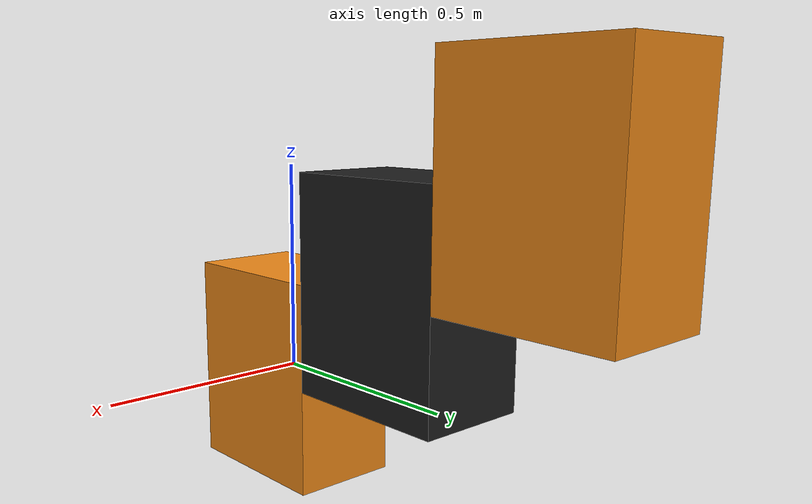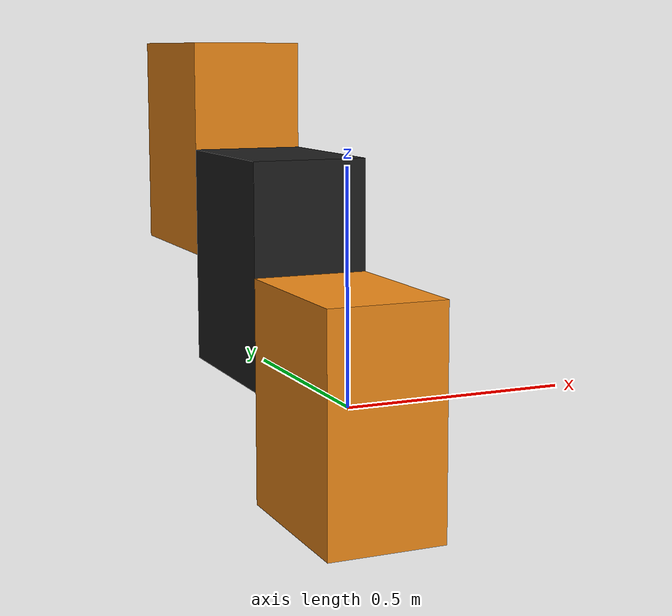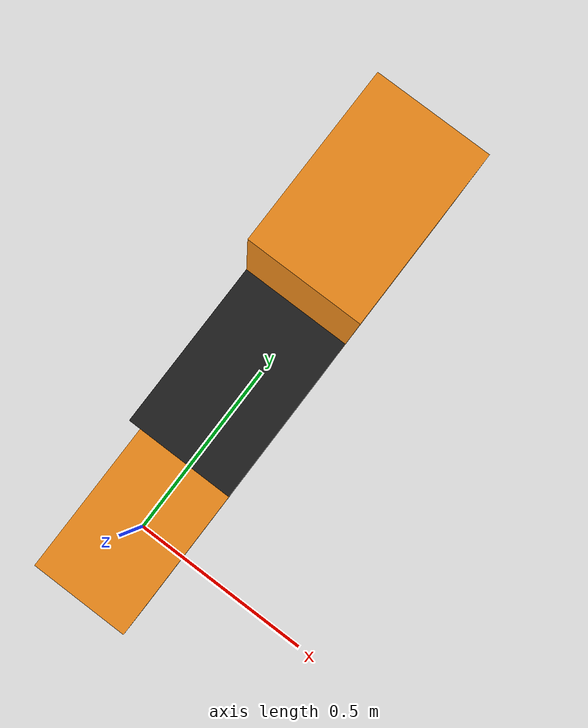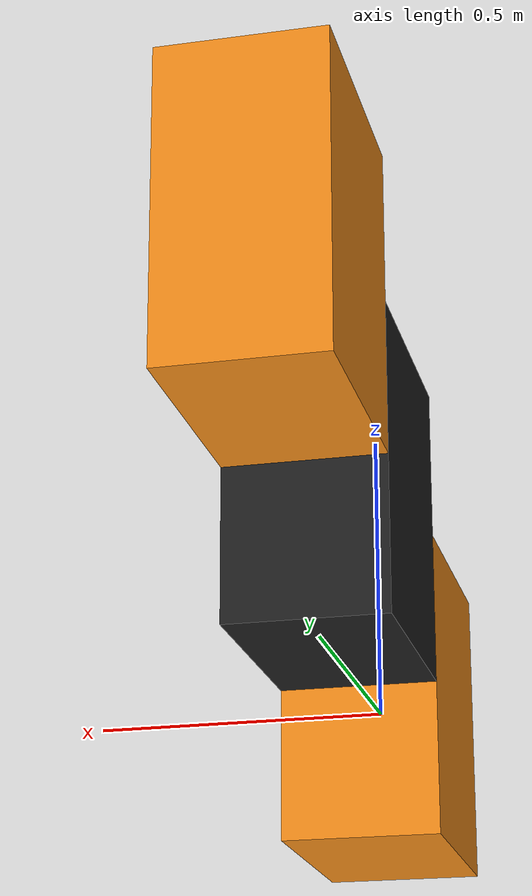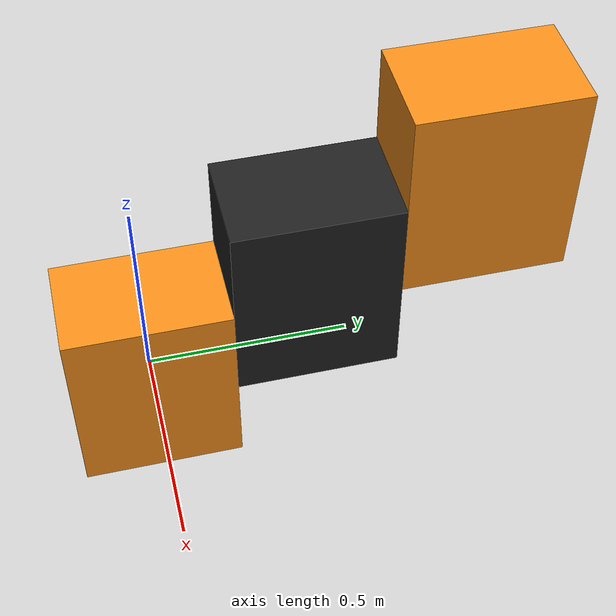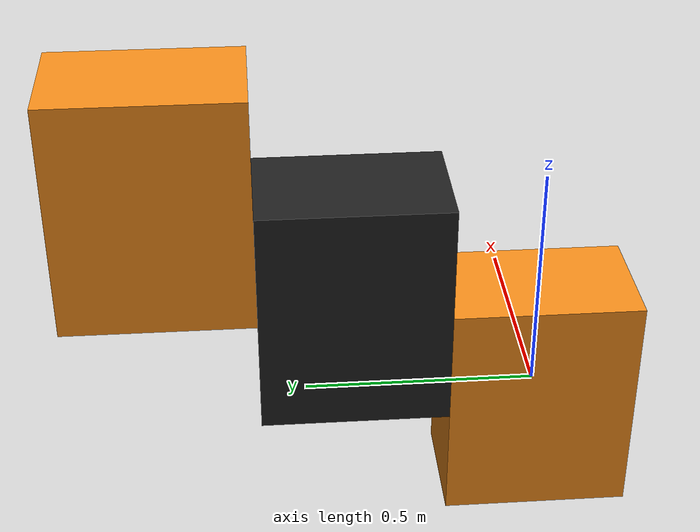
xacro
<?xml version="1.0"?>
<robot name="test_myrobot" xmlns:xacro="http://www.ros.org/wiki/xacro">
    <xacro:property name="mass" value="1" />
    <xacro:property name="ax12_width" value="0.26" />
    <xacro:property name="ax12_height" value="0.5" />
    <xacro:property name="ax12_depth" value="0.4" />
    <xacro:property name="axel_offset" value="0.25" /> <!-- Space btw top of beam and the each joint -->
    <xacro:property name="width" value="0.1" /> <!-- Square dimensions (widthxwidth) of beams -->
    <xacro:property name="height1" value="2" /> <!-- Link 1 -->
    <xacro:property name="height2" value="1" /> <!-- Link 2 -->
    <xacro:property name="height3" value="1" /> <!-- Link 3 -->
    <xacro:property name="link1_origin">
        <origin xyz="0 0 0" rpy="0 0 0"/>
    </xacro:property>
    <xacro:property name="link2_origin">
        <origin xyz="0 0 ${ax12_height/2 - axel_offset}" rpy="0 0 0"/>
    </xacro:property>
    <xacro:property name="link3_origin">
        <origin xyz="0 0 ${ax12_height/2 - axel_offset}" rpy="0 0 0"/>
    </xacro:property>
    <xacro:property name="ax12_block">
        <box size="${ax12_width} ${ax12_depth} ${ax12_height}"/>
    </xacro:property>
    <xacro:property name="ax12_block_inertia">
        <inertia
            ixx="${mass/12.0*(ax12_width*ax12_width + ax12_height*ax12_height)}" ixy="0.0" ixz="0.0"
            iyy="${mass/12.0*(ax12_width*ax12_width + ax12_height*ax12_height)}" iyz="0.0"
            izz="${mass/12.0*(ax12_width*ax12_width + ax12_width*ax12_width)}"/>
    </xacro:property>

    <!-- Import Gazebo-customization stuff -->
    <xacro:include filename="$(find jimmy2_description)/urdf/test.gazebo" />

    <link name="world" />
    <joint name="fixed" type="fixed">
        <parent link="world"/>
        <child link="link1"/>
    </joint>

    <!-- Base Link -->
    <link name="link1">
        <collision>
            <xacro:insert_block name="link1_origin"/>
            <geometry>
                <xacro:insert_block name="ax12_block"/>
            </geometry>
        </collision>
        <visual>
            <xacro:insert_block name="link1_origin"/>
            <geometry>
                <xacro:insert_block name="ax12_block"/>
            </geometry>
            <material name="orange"/>
        </visual>
        <inertial>
            <xacro:insert_block name="link1_origin"/>
            <mass value="${mass}"/>
            <xacro:insert_block name="ax12_block_inertia"/>
        </inertial>
    </link>

    <!-- end of Base Link -->

    <joint name="joint1" type="continuous">
        <parent link="link1"/>
        <child link="link2"/>
        <origin xyz="0 ${ax12_depth} ${ax12_height - axel_offset}" rpy="0 0 0"/>
        <axis xyz="0 1 0"/>
        <dynamics damping="0.7"/>
    </joint>

    <!-- Middle Link -->
    <link name="link2">
        <collision>
            <xacro:insert_block name="link2_origin"/>
            <geometry>
                <xacro:insert_block name="ax12_block"/>
            </geometry>
        </collision>
        <visual>
            <xacro:insert_block name="link2_origin"/>
            <geometry>
                <xacro:insert_block name="ax12_block"/>
            </geometry>
            <material name="black"/>
        </visual>
        <inertial>
            <xacro:insert_block name="link2_origin"/>
            <mass value="${mass}"/>
            <xacro:insert_block name="ax12_block_inertia"/>
        </inertial>
    </link>

    <!-- end of Base Link -->

    <joint name="joint2" type="continuous">
        <parent link="link2"/>
        <child link="link3"/>
        <origin xyz="0 ${ax12_depth} ${ax12_height - axel_offset}" rpy="0 0 0"/>
        <axis xyz="0 1 0"/>
        <dynamics damping="0.7"/>
    </joint>

    <!-- Top Link -->
    <link name="link3">
        <collision>
            <xacro:insert_block name="link3_origin"/>
            <geometry>
                <xacro:insert_block name="ax12_block"/>
            </geometry>
        </collision>
        <visual>
            <xacro:insert_block name="link3_origin"/>
            <geometry>
                <xacro:insert_block name="ax12_block"/>
            </geometry>
            <material name="orange"/>
        </visual>
        <inertial>
            <xacro:insert_block name="link3_origin"/>
            <mass value="${mass}"/>
            <xacro:insert_block name="ax12_block_inertia"/>
        </inertial>
    </link>

    <!-- end of Top Link -->

    <!-- Transmissions -->
    <transmission name="tran1">
        <type>transmission_interface/SimpleTransmission</type>
        <joint name="joint1">
            <hardwareInterface>hardware_interface/EffortJointInterface</hardwareInterface>
        </joint>
        <actuator name="motor1">
            <hardwareInterface>hardware_interface/EffortJointInterface</hardwareInterface>
            <mechanicalReduction>1</mechanicalReduction>
        </actuator>
    </transmission>

    <transmission name="tran2">
        <type>transmission_interface/SimpleTransmission</type>
        <joint name="joint2">
            <hardwareInterface>hardware_interface/EffortJointInterface</hardwareInterface>
        </joint>
        <actuator name="motor2">
            <hardwareInterface>hardware_interface/EffortJointInterface</hardwareInterface>
            <mechanicalReduction>1</mechanicalReduction>
        </actuator>
    </transmission>

    <!-- Connect Gazebo to ROS -->
    <!-- see test.gazebo -->
</robot>
